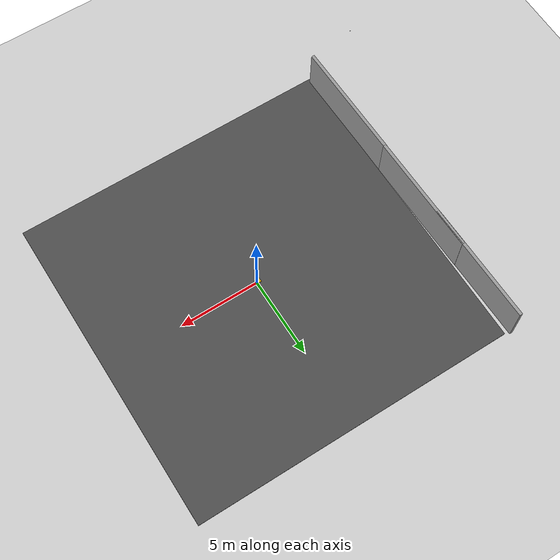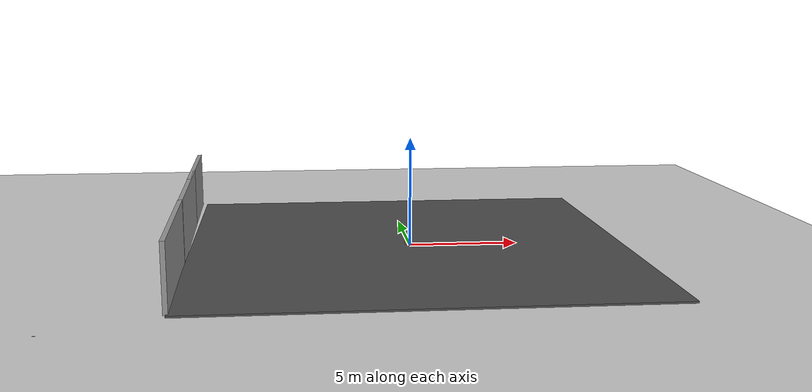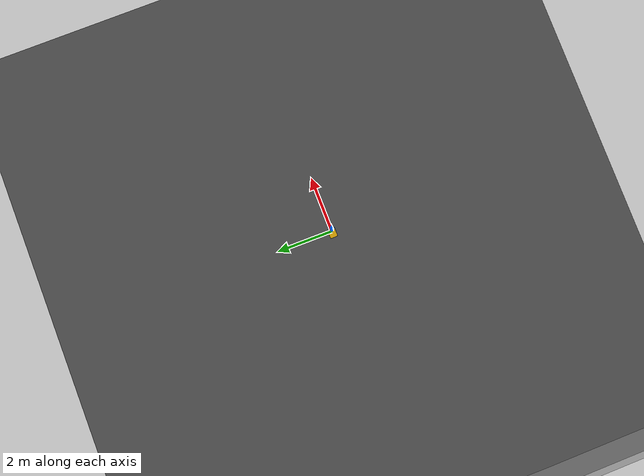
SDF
<sdf version="1.7">
 <world name="default">
  <light name="sun" type="directional">
   <pose>0 0 10 0 -0 0</pose>
   <diffuse>0.8 0.8 0.8 1</diffuse>
   <specular>0.2 0.2 0.2 1</specular>
   <attenuation>
    <range>1000</range>
    <constant>0.9</constant>
    <linear>0.01</linear>
    <quadratic>0.001</quadratic>
   </attenuation>
   <direction>-0.5 0.1 -0.9</direction>
   <spot><inner_angle>0</inner_angle><outer_angle>0</outer_angle><falloff>0</falloff></spot>
  </light>
  <model name="ground_plane">
   <static>1</static>
   <link name="link">
    <collision name="collision">
     <geometry><plane><normal>0 0 1</normal><size>100 100</size></plane></geometry>
     <surface><friction><ode><mu>100</mu><mu2>50</mu2></ode></friction></surface>
    </collision>
    <visual name="visual">
     <cast_shadows>0</cast_shadows>
     <geometry><plane><normal>0 0 1</normal><size>100 100</size></plane></geometry>
     <material>
      <script><uri>file://media/materials/scripts/gazebo.material</uri><name>Gazebo/Grey</name></script>
     </material>
    </visual>
   </link>
  </model>
  <gravity>0 0 -9.8</gravity>
  <magnetic_field>6e-06 2.3e-05 -4.2e-05</magnetic_field>
  <atmosphere type="adiabatic"/>
  <physics type="ode">
   <max_step_size>0.001</max_step_size>
   <real_time_factor>1</real_time_factor>
   <real_time_update_rate>1000</real_time_update_rate>
  </physics>
  <scene><ambient>0.4 0.4 0.4 1</ambient><background>0.7 0.7 0.7 1</background><shadows>1</shadows></scene>
  <spherical_coordinates>
   <surface_model>EARTH_WGS84</surface_model>
   <latitude_deg>0</latitude_deg>
   <longitude_deg>0</longitude_deg>
   <elevation>0</elevation>
   <heading_deg>0</heading_deg>
  </spherical_coordinates>
  <model name="asphalt_plane">
   <static>1</static>
   <link name="link">
    <collision name="collision"><geometry><box><size>20 20 0.1</size></box></geometry></collision>
    <visual name="visual">
     <cast_shadows>0</cast_shadows>
     <geometry><box><size>20 20 0.1</size></box></geometry>
     <material>
      <script>
       <uri>model://asphalt_plane/materials/scripts</uri>
       <uri>model://asphalt_plane/materials/textures</uri>
       <name>vrc/asphalt</name>
      </script>
     </material>
    </visual>
   </link>
   <pose>-0.089672 0.059574 0 0 -0 0</pose>
  </model>
  <model name="grey_wall">
   <static>1</static>
   <link name="link">
    <pose>0 0 1.4 0 -0 0</pose>
    <collision name="collision"><geometry><box><size>7.5 0.2 2.8</size></box></geometry></collision>
    <visual name="visual">
     <cast_shadows>0</cast_shadows>
     <geometry><box><size>7.5 0.2 2.8</size></box></geometry>
     <material>
      <script>
       <uri>model://grey_wall/materials/scripts</uri>
       <uri>model://grey_wall/materials/textures</uri>
       <name>vrc/grey_wall</name>
      </script>
     </material>
    </visual>
   </link>
   <pose>-10.1561 -5.99504 0 0 -0 1.58739</pose>
  </model>
  <model name="grey_wall_clone">
   <static>1</static>
   <link name="link">
    <pose>0 0 1.4 0 -0 0</pose>
    <collision name="collision"><geometry><box><size>7.5 0.2 2.8</size></box></geometry></collision>
    <visual name="visual">
     <cast_shadows>0</cast_shadows>
     <geometry><box><size>7.5 0.2 2.8</size></box></geometry>
     <material>
      <script>
       <uri>model://grey_wall/materials/scripts</uri>
       <uri>model://grey_wall/materials/textures</uri>
       <name>vrc/grey_wall</name>
      </script>
     </material>
    </visual>
   </link>
   <pose>-10.2657 1.37707 0 0 -0 1.58739</pose>
  </model>
  <model name="grey_wall_clone_clone">
   <static>1</static>
   <link name="link">
    <pose>0 0 1.4 0 -0 0</pose>
    <collision name="collision"><geometry><box><size>7.5 0.2 2.8</size></box></geometry></collision>
    <visual name="visual">
     <cast_shadows>0</cast_shadows>
     <geometry><box><size>7.5 0.2 2.8</size></box></geometry>
     <material>
      <script>
       <uri>model://grey_wall/materials/scripts</uri>
       <uri>model://grey_wall/materials/textures</uri>
       <name>vrc/grey_wall</name>
      </script>
     </material>
    </visual>
   </link>
   <pose>-10.3624 6.45785 0 0 -0 1.58739</pose>
  </model>
  <light name="user_directional_light_0" type="directional">
   <pose>-5.63054 -11.2657 1 0 -0 0</pose>
   <diffuse>0.5 0.5 0.5 1</diffuse>
   <specular>0.1 0.1 0.1 1</specular>
   <direction>0.1 0.1 -0.9</direction>
   <attenuation>
    <range>20</range>
    <constant>0.5</constant>
    <linear>0.01</linear>
    <quadratic>0.001</quadratic>
   </attenuation>
   <spot><inner_angle>0</inner_angle><outer_angle>0</outer_angle><falloff>0</falloff></spot>
  </light>
  <light name="user_directional_light_1" type="directional">
   <pose>10.4762 9.60881 1 0 -0 0</pose>
   <diffuse>0.5 0.5 0.5 1</diffuse>
   <specular>0.1 0.1 0.1 1</specular>
   <direction>0.1 0.1 -0.9</direction>
   <attenuation>
    <range>20</range>
    <constant>0.5</constant>
    <linear>0.01</linear>
    <quadratic>0.001</quadratic>
   </attenuation>
   <spot><inner_angle>0</inner_angle><outer_angle>0</outer_angle><falloff>0</falloff></spot>
  </light>
  <audio><device>default</device></audio>
  <model name="marrtinorobot2">
   <link name="base_footprint">
    <inertial>
     <pose>0.02241 0 0.11251 0 -0 0</pose>
     <mass>1.245</mass>
     <inertia>
      <ixx>0.00751955</ixx>
      <ixy>0</ixy>
      <ixz>-0.00155147</ixz>
      <iyy>0.0123441</iyy>
      <iyz>0</iyz>
      <izz>0.0165035</izz>
     </inertia>
    </inertial>
    <collision name="base_footprint_fixed_joint_lump__base_link_collision">
     <pose>0 0 0.1 0 -0 0</pose>
     <geometry><box><size>0.3 0.26 0.08</size></box></geometry>
    </collision>
    <collision name="base_footprint_fixed_joint_lump__camera_link_collision_1">
     <pose>0.14 0 0.145 0 -0 0</pose>
     <geometry><box><size>0.03 0.124 0.03</size></box></geometry>
    </collision>
    <collision name="base_footprint_fixed_joint_lump__laser_collision_2">
     <pose>0.1 0 0.175 0 -0 0</pose>
     <geometry><cylinder><length>0.05</length><radius>0.0375</radius></cylinder></geometry>
    </collision>
    <collision name="base_footprint_fixed_joint_lump__rear_caster_wheel_link_collision_3">
     <pose>-0.1 0 0.05 0 -0 0</pose>
     <geometry><sphere><radius>0.05</radius></sphere></geometry>
     <surface><friction><ode><mu>0.01</mu><mu2>0.01</mu2></ode></friction></surface>
    </collision>
    <visual name="base_footprint_fixed_joint_lump__base_link_visual">
     <pose>0 0 0.1 0 -0 0</pose>
     <geometry><box><size>0.3 0.26 0.08</size></box></geometry>
     <material>
      <ambient>0.8392 0.6314 0 1</ambient>
      <diffuse>0.8392 0.6314 0 1</diffuse>
      <specular>0.99 0.99 0.99 1</specular>
      <emissive>0 0 0 0</emissive>
     </material>
    </visual>
    <visual name="base_footprint_fixed_joint_lump__camera_link_visual_1">
     <pose>0.14 0 0.145 0 -0 0</pose>
     <geometry><box><size>0.03 0.124 0.03</size></box></geometry>
     <material>
      <ambient>0.416 0.051 0.047 1</ambient>
      <diffuse>0.416 0.051 0.047 1</diffuse>
      <specular>0.416 0.051 0.047 1</specular>
      <emissive>0.416 0.051 0.047 1</emissive>
     </material>
    </visual>
    <visual name="base_footprint_fixed_joint_lump__laser_visual_2">
     <pose>0.1 0 0.175 0 -0 0</pose>
     <geometry><cylinder><length>0.05</length><radius>0.0375</radius></cylinder></geometry>
     <material>
      <ambient>0.003 0.639 0.223 1</ambient>
      <diffuse>0.003 0.639 0.223 1</diffuse>
      <specular>0.003 0.639 0.223 1</specular>
      <emissive>0 0 0 0</emissive>
     </material>
    </visual>
    <visual name="base_footprint_fixed_joint_lump__rear_caster_wheel_link_visual_3">
     <pose>-0.1 0 0.05 0 -0 0</pose>
     <geometry><sphere><radius>0.05</radius></sphere></geometry>
    </visual>
    <sensor name="camera" type="depth">
     <always_on>1</always_on>
     <update_rate>30</update_rate>
     <camera name="camera">
      <horizontal_fov>1.50098</horizontal_fov>
      <image><width>640</width><height>480</height><format>R8G8B8</format></image>
      <clip><near>0.1</near><far>100</far></clip>
     </camera>
     <plugin name="camera_controller" filename="libgazebo_ros_camera.so">
      <ros>
       <remapping>/camera/camera_info:=/camera/color/camera_info</remapping>
       <remapping>/camera/image_raw:=/camera/color/image_raw</remapping>
       <remapping>/camera/points:=/camera/depth/color/points</remapping>
       <remapping>/camera/depth/image_raw:=/camera/depth/image_rect_raw</remapping>
      </ros>
      <min_depth>0.015</min_depth>
      <max_depth>3.0</max_depth>
      <hack_baseline>0.07</hack_baseline>
      <frame_name>camera_depth_link</frame_name>
      <distortion_k1>0.00000001</distortion_k1>
      <distortion_k2>0.00000001</distortion_k2>
      <distortion_k3>0.00000001</distortion_k3>
      <distortion_t1>0.00000001</distortion_t1>
      <distortion_t2>0.00000001</distortion_t2>
     </plugin>
     <pose>0.14 0 0.145 0 -0 0</pose>
    </sensor>
    <sensor name="imu_sensor" type="imu">
     <always_on>1</always_on>
     <update_rate>20</update_rate>
     <visualize>1</visualize>
     <topic>__default_topic__</topic>
     <plugin name="imu_plugin" filename="libgazebo_ros_imu_sensor.so">
      <ros><remapping>~/out:=imu/data</remapping></ros>
      <topicName>imu/data</topicName>
      <bodyName>imu_link</bodyName>
      <updateRateHZ>10.0</updateRateHZ>
      <gaussianNoise>0.0</gaussianNoise>
      <xyzOffset>0 0 0</xyzOffset>
      <rpyOffset>0 0 0</rpyOffset>
      <frameName>imu_link</frameName>
      <initialOrientationAsReference>0</initialOrientationAsReference>
     </plugin>
     <pose>0 0 0.1 0 -0 0</pose>
    </sensor>
    <sensor name="laser_head_hokuyo_sensor" type="ray">
     <always_on>1</always_on>
     <update_rate>10</update_rate>
     <visualize>0</visualize>
     <ray>
      <scan>
       <horizontal>
        <samples>360</samples>
        <resolution>1</resolution>
        <min_angle>-3.1416</min_angle>
        <max_angle>3.1416</max_angle>
       </horizontal>
       <vertical><samples>1</samples><min_angle>0</min_angle><max_angle>0</max_angle></vertical>
      </scan>
      <range><min>0.08</min><max>12</max><resolution>0.01</resolution></range>
     </ray>
     <plugin name="laser_gazebo_ros_head_hokuyo_controller" filename="libgazebo_ros_ray_sensor.so">
      <ros><remapping>~/out:=scan</remapping></ros>
      <output_type>sensor_msgs/LaserScan</output_type>
      <alwaysOn>1</alwaysOn>
      <updateRate>10</updateRate>
      <topicName>scan</topicName>
      <frame_name>laser</frame_name>
      <output_type>sensor_msgs/LaserScan</output_type>
     </plugin>
     <pose>0.1 0 0.2 0 -0 0</pose>
    </sensor>
   </link>
   <joint name="left_wheel_joint" type="revolute">
    <pose relative_to="base_footprint">0.1 0.13 0.07 0 -0 0</pose>
    <parent>base_footprint</parent>
    <child>left_wheel_link</child>
    <axis>
     <xyz>0 1 0</xyz>
     <limit><lower>-1e+16</lower><upper>1e+16</upper></limit>
     <dynamics><spring_reference>0</spring_reference><spring_stiffness>0</spring_stiffness></dynamics>
    </axis>
   </joint>
   <link name="left_wheel_link">
    <pose relative_to="left_wheel_joint">0 0 0 0 -0 0</pose>
    <inertial>
     <mass>0.1</mass>
     <inertia>
      <ixx>0.000196</ixx>
      <ixy>0</ixy>
      <ixz>0</ixz>
      <iyy>0.000196</iyy>
      <iyz>0</iyz>
      <izz>0.000196</izz>
     </inertia>
    </inertial>
    <collision name="left_wheel_link_collision">
     <pose>0 0 0 1.5708 -0 0</pose>
     <geometry><cylinder><length>0.02</length><radius>0.07</radius></cylinder></geometry>
    </collision>
    <visual name="left_wheel_link_visual">
     <pose>0 0 0 1.5708 -0 0</pose>
     <geometry><cylinder><length>0.02</length><radius>0.07</radius></cylinder></geometry>
     <material>
      <ambient>0.1764 0.4588 0.8509 1</ambient>
      <diffuse>0.1764 0.4588 0.8509 1</diffuse>
      <specular>0.1764 0.4588 0.8509 1</specular>
      <emissive>0 0 0 0</emissive>
     </material>
    </visual>
   </link>
   <joint name="right_wheel_joint" type="revolute">
    <pose relative_to="base_footprint">0.1 -0.13 0.07 0 -0 0</pose>
    <parent>base_footprint</parent>
    <child>right_wheel_link</child>
    <axis>
     <xyz>0 1 0</xyz>
     <limit><lower>-1e+16</lower><upper>1e+16</upper></limit>
     <dynamics><spring_reference>0</spring_reference><spring_stiffness>0</spring_stiffness></dynamics>
    </axis>
   </joint>
   <link name="right_wheel_link">
    <pose relative_to="right_wheel_joint">0 0 0 0 -0 0</pose>
    <inertial>
     <mass>0.1</mass>
     <inertia>
      <ixx>0.000196</ixx>
      <ixy>0</ixy>
      <ixz>0</ixz>
      <iyy>0.000196</iyy>
      <iyz>0</iyz>
      <izz>0.000196</izz>
     </inertia>
    </inertial>
    <collision name="right_wheel_link_collision">
     <pose>0 0 0 1.5708 -0 0</pose>
     <geometry><cylinder><length>0.02</length><radius>0.07</radius></cylinder></geometry>
    </collision>
    <visual name="right_wheel_link_visual">
     <pose>0 0 0 1.5708 -0 0</pose>
     <geometry><cylinder><length>0.02</length><radius>0.07</radius></cylinder></geometry>
     <material>
      <ambient>0.1764 0.4588 0.8509 1</ambient>
      <diffuse>0.1764 0.4588 0.8509 1</diffuse>
      <specular>0.1764 0.4588 0.8509 1</specular>
      <emissive>0 0 0 0</emissive>
     </material>
    </visual>
   </link>
   <static>0</static>
   <plugin name="differential_drive_controller" filename="libgazebo_ros_diff_drive.so">
    <ros><argument>odom:=odom/unfiltered</argument></ros>
    <updateRate>100</updateRate>
    <left_joint>left_wheel_joint</left_joint>
    <right_joint>right_wheel_joint</right_joint>
    <wheel_separation>0.26</wheel_separation>
    <wheel_diameter>0.14</wheel_diameter>
    <max_wheel_acceleration>1.0</max_wheel_acceleration>
    <robot_base_frame>base_footprint</robot_base_frame>
    <publish_odom>1</publish_odom>
    <publish_odom_tf>0</publish_odom_tf>
    <publish_wheel_tf>1</publish_wheel_tf>
    <odometry_frame>odom</odometry_frame>
   </plugin>
   <pose>-0.079576 -0.003972 0.049998 -2e-06 -2e-05 0.039406</pose>
  </model>
  <model name="stone_10_2_5_1cm">
   <link name="link">
    <pose>0 0 0.005 0 -0 0</pose>
    <inertial>
     <mass>0.0628</mass>
     <inertia>
      <ixx>3.79417e-06</ixx>
      <ixy>0</ixy>
      <ixz>0</ixz>
      <iyy>5.28567e-05</iyy>
      <iyz>0</iyz>
      <izz>5.56042e-05</izz>
     </inertia>
    </inertial>
    <collision name="collision">
     <geometry><box><size>0.1 0.025 0.01</size></box></geometry>
     <surface>
      <contact>
       <poissons_ratio>0.15</poissons_ratio>
       <elastic_modulus>8e+10</elastic_modulus>
       <ode><kp>100000</kp><kd>100</kd><max_vel>100</max_vel><min_depth>0.001</min_depth></ode>
      </contact>
      <friction>
       <torsional>
        <coefficient>1</coefficient>
        <use_patch_radius>0</use_patch_radius>
        <surface_radius>0.01</surface_radius>
       </torsional>
      </friction>
     </surface>
    </collision>
    <visual name="visual">
     <geometry><box><size>0.1 0.025 0.01</size></box></geometry>
     <material>
      <script><uri>file://media/materials/scripts/gazebo.material</uri><name>Gazebo/Grey</name></script>
     </material>
    </visual>
   </link>
   <pose>-14.3119 -11.634 0 0 -0 0</pose>
  </model>
 </world>
</sdf>
